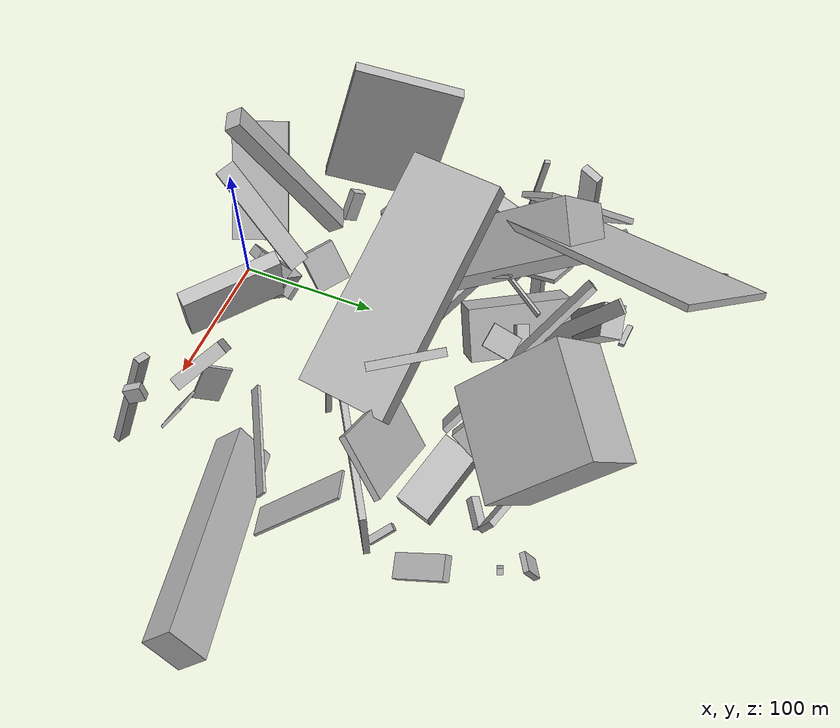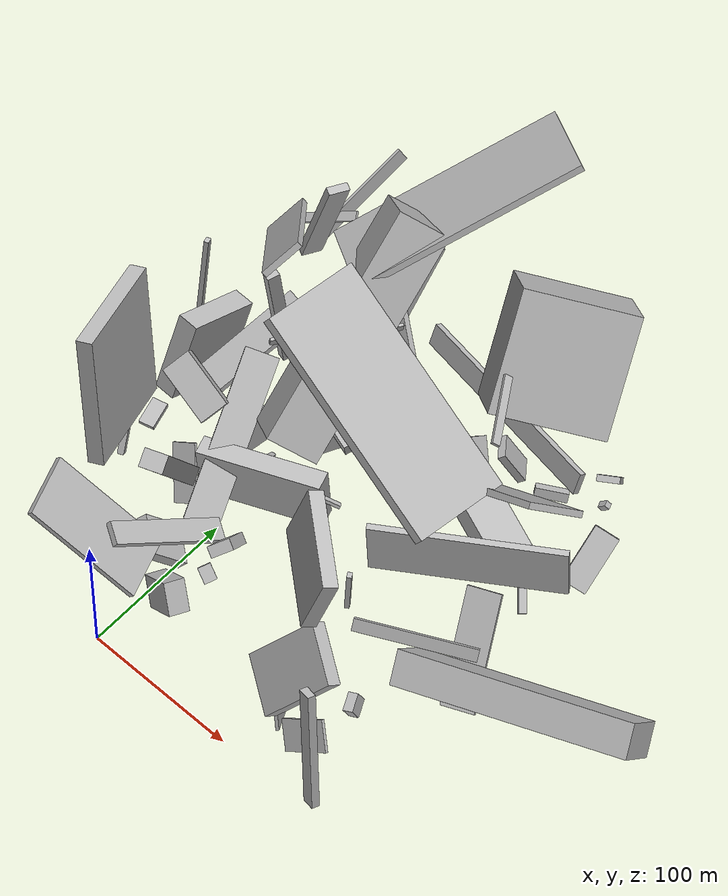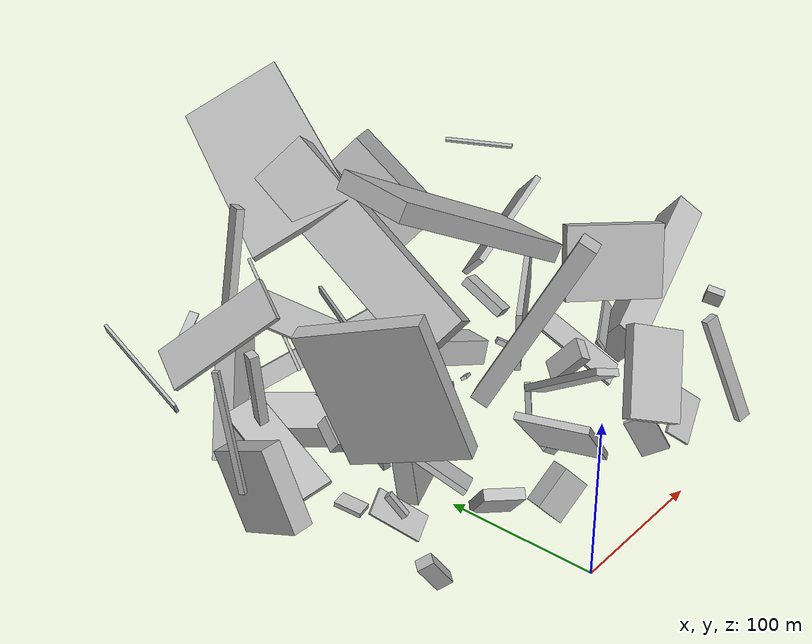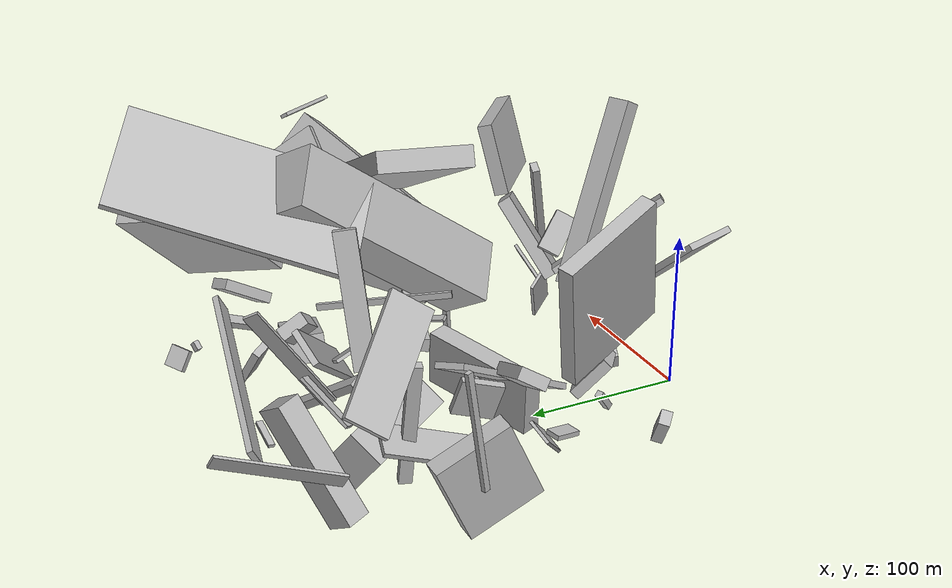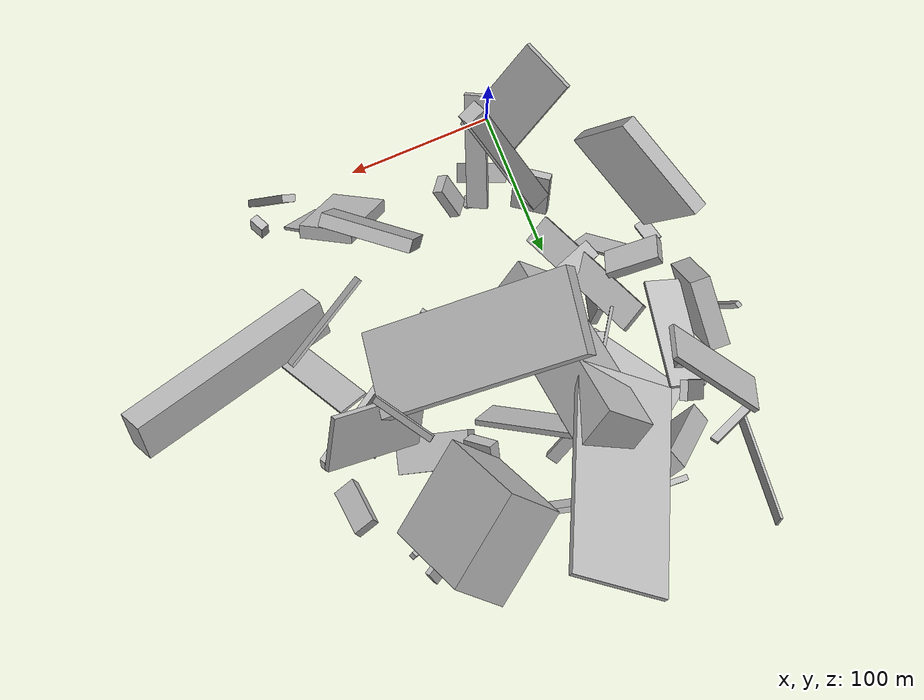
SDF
<sdf version="1.6">
 <world name="default">
  <model name="building_2">
   <static>0</static>
   <pose>-1.69499927644267 78.45073827126195 86.37497318792698 0.07220504103765624 -0.5015056887633661 1.9244864186337203</pose>
   <link name="link">
    <gravity>0</gravity>
    <pose>0 0 57.5 0 0 0</pose>
    <collision name="collision"><geometry><box><size>11 14 115</size></box></geometry></collision>
    <visual name="visual">
     <cast_shadows>0</cast_shadows>
     <geometry><box><size>11 14 115</size></box></geometry>
     <material>
      <script>
       <uri>model://HANNAS_wall/materials/scripts</uri>
       <uri>model://HANNAS_wall/materials/textures</uri>
       <name>vrc/HANNAS_wall</name>
      </script>
     </material>
    </visual>
   </link>
  </model>
  <model name="building_6">
   <static>0</static>
   <pose>-4.021483482341315 214.1233752536972 29.090512028109554 -3.027519833887416 -0.9082310783751878 -2.646285269551218</pose>
   <link name="link">
    <gravity>0</gravity>
    <pose>0 0 12.0 0 0 0</pose>
    <collision name="collision"><geometry><box><size>38 73 24</size></box></geometry></collision>
    <visual name="visual">
     <cast_shadows>0</cast_shadows>
     <geometry><box><size>38 73 24</size></box></geometry>
     <material>
      <script>
       <uri>model://HANNAS_wall/materials/scripts</uri>
       <uri>model://HANNAS_wall/materials/textures</uri>
       <name>vrc/HANNAS_wall</name>
      </script>
     </material>
    </visual>
   </link>
  </model>
  <model name="building_8">
   <static>0</static>
   <pose>127.06569472224858 238.69900216793445 95.78885259071888 0.7653650072681788 -0.26575010118467 -2.508618611504383</pose>
   <link name="link">
    <gravity>0</gravity>
    <pose>0 0 37.5 0 0 0</pose>
    <collision name="collision"><geometry><box><size>71 43 75</size></box></geometry></collision>
    <visual name="visual">
     <cast_shadows>0</cast_shadows>
     <geometry><box><size>71 43 75</size></box></geometry>
     <material>
      <script>
       <uri>model://HANNAS_wall/materials/scripts</uri>
       <uri>model://HANNAS_wall/materials/textures</uri>
       <name>vrc/HANNAS_wall</name>
      </script>
     </material>
    </visual>
   </link>
  </model>
  <model name="building_12">
   <static>0</static>
   <pose>-64.8675989419472 88.76867121726475 41.04305086515134 1.5485127155446756 0.6728806258827076 1.968441143641871</pose>
   <link name="link">
    <gravity>0</gravity>
    <pose>0 0 2.0 0 0 0</pose>
    <collision name="collision"><geometry><box><size>4 16 4</size></box></geometry></collision>
    <visual name="visual">
     <cast_shadows>0</cast_shadows>
     <geometry><box><size>4 16 4</size></box></geometry>
     <material>
      <script>
       <uri>model://HANNAS_wall/materials/scripts</uri>
       <uri>model://HANNAS_wall/materials/textures</uri>
       <name>vrc/HANNAS_wall</name>
      </script>
     </material>
    </visual>
   </link>
  </model>
  <model name="building_15">
   <static>0</static>
   <pose>28.11869566267768 131.06991790489772 89.83151523766983 0.8233377608432507 -0.50299375837068 -2.653175990131853</pose>
   <link name="link">
    <gravity>0</gravity>
    <pose>0 0 75.0 0 0 0</pose>
    <collision name="collision"><geometry><box><size>33 38 150</size></box></geometry></collision>
    <visual name="visual">
     <cast_shadows>0</cast_shadows>
     <geometry><box><size>33 38 150</size></box></geometry>
     <material>
      <script>
       <uri>model://HANNAS_wall/materials/scripts</uri>
       <uri>model://HANNAS_wall/materials/textures</uri>
       <name>vrc/HANNAS_wall</name>
      </script>
     </material>
    </visual>
   </link>
  </model>
  <model name="building_24">
   <static>0</static>
   <pose>141.41804909616135 151.40605957398418 112.35346194942885 -0.09895257340696313 1.0911281022438857 2.890886171830718</pose>
   <link name="link">
    <gravity>0</gravity>
    <pose>0 0 75.0 0 0 0</pose>
    <collision name="collision"><geometry><box><size>13 58 150</size></box></geometry></collision>
    <visual name="visual">
     <cast_shadows>0</cast_shadows>
     <geometry><box><size>13 58 150</size></box></geometry>
     <material>
      <script>
       <uri>model://HANNAS_wall/materials/scripts</uri>
       <uri>model://HANNAS_wall/materials/textures</uri>
       <name>vrc/HANNAS_wall</name>
      </script>
     </material>
    </visual>
   </link>
  </model>
  <model name="building_27">
   <static>0</static>
   <pose>119.43008749507898 34.0795139759411 62.10818208030938 -2.6143554309659014 -0.9071102201990853 0.5768986253314744</pose>
   <link name="link">
    <gravity>0</gravity>
    <pose>0 0 4.5 0 0 0</pose>
    <collision name="collision"><geometry><box><size>59 37 9</size></box></geometry></collision>
    <visual name="visual">
     <cast_shadows>0</cast_shadows>
     <geometry><box><size>59 37 9</size></box></geometry>
     <material>
      <script>
       <uri>model://HANNAS_wall/materials/scripts</uri>
       <uri>model://HANNAS_wall/materials/textures</uri>
       <name>vrc/HANNAS_wall</name>
      </script>
     </material>
    </visual>
   </link>
  </model>
  <model name="building_29">
   <static>0</static>
   <pose>-18.501599703181732 34.55249805500484 91.51514530621527 -1.599079204548019 -0.7428505819784835 -2.775323332562183</pose>
   <link name="link">
    <gravity>0</gravity>
    <pose>0 0 19.5 0 0 0</pose>
    <collision name="collision"><geometry><box><size>81 4 39</size></box></geometry></collision>
    <visual name="visual">
     <cast_shadows>0</cast_shadows>
     <geometry><box><size>81 4 39</size></box></geometry>
     <material>
      <script>
       <uri>model://HANNAS_wall/materials/scripts</uri>
       <uri>model://HANNAS_wall/materials/textures</uri>
       <name>vrc/HANNAS_wall</name>
      </script>
     </material>
    </visual>
   </link>
  </model>
  <model name="building_33">
   <static>0</static>
   <pose>146.41188995742405 155.93993946319154 42.02053506550675 0.03514720147749563 0.0022768369842550086 -1.0051173656140224</pose>
   <link name="link">
    <gravity>0</gravity>
    <pose>0 0 21.0 0 0 0</pose>
    <collision name="collision"><geometry><box><size>4 116 42</size></box></geometry></collision>
    <visual name="visual">
     <cast_shadows>0</cast_shadows>
     <geometry><box><size>4 116 42</size></box></geometry>
     <material>
      <script>
       <uri>model://HANNAS_wall/materials/scripts</uri>
       <uri>model://HANNAS_wall/materials/textures</uri>
       <name>vrc/HANNAS_wall</name>
      </script>
     </material>
    </visual>
   </link>
  </model>
  <model name="building_34">
   <static>0</static>
   <pose>-67.7980578442995 217.5691544374693 91.88285674449496 0.8321114528238347 -0.6209963709701257 -2.9994786119582115</pose>
   <link name="link">
    <gravity>0</gravity>
    <pose>0 0 14.0 0 0 0</pose>
    <collision name="collision"><geometry><box><size>4 80 28</size></box></geometry></collision>
    <visual name="visual">
     <cast_shadows>0</cast_shadows>
     <geometry><box><size>4 80 28</size></box></geometry>
     <material>
      <script>
       <uri>model://HANNAS_wall/materials/scripts</uri>
       <uri>model://HANNAS_wall/materials/textures</uri>
       <name>vrc/HANNAS_wall</name>
      </script>
     </material>
    </visual>
   </link>
  </model>
  <model name="building_37">
   <static>0</static>
   <pose>166.17992131516675 181.48246720280108 10.305339806930833 -3.0049209529908656 -0.4776856057005283 2.315428261411848</pose>
   <link name="link">
    <gravity>0</gravity>
    <pose>0 0 2.0 0 0 0</pose>
    <collision name="collision"><geometry><box><size>19 5 4</size></box></geometry></collision>
    <visual name="visual">
     <cast_shadows>0</cast_shadows>
     <geometry><box><size>19 5 4</size></box></geometry>
     <material>
      <script>
       <uri>model://HANNAS_wall/materials/scripts</uri>
       <uri>model://HANNAS_wall/materials/textures</uri>
       <name>vrc/HANNAS_wall</name>
      </script>
     </material>
    </visual>
   </link>
  </model>
  <model name="building_39">
   <static>0</static>
   <pose>144.4724974373607 272.6632254772811 8.677053772840171 -1.4650228658175313 0.5666898650434783 -0.9797135430467324</pose>
   <link name="link">
    <gravity>0</gravity>
    <pose>0 0 7.0 0 0 0</pose>
    <collision name="collision"><geometry><box><size>4 14 14</size></box></geometry></collision>
    <visual name="visual">
     <cast_shadows>0</cast_shadows>
     <geometry><box><size>4 14 14</size></box></geometry>
     <material>
      <script>
       <uri>model://HANNAS_wall/materials/scripts</uri>
       <uri>model://HANNAS_wall/materials/textures</uri>
       <name>vrc/HANNAS_wall</name>
      </script>
     </material>
    </visual>
   </link>
  </model>
  <model name="building_43">
   <static>0</static>
   <pose>35.012057612316056 225.5107082541949 53.2711031528598 0.8115681893532596 -0.7263582766795112 0.35663448138038545</pose>
   <link name="link">
    <gravity>0</gravity>
    <pose>0 0 2.0 0 0 0</pose>
    <collision name="collision"><geometry><box><size>23 135 4</size></box></geometry></collision>
    <visual name="visual">
     <cast_shadows>0</cast_shadows>
     <geometry><box><size>23 135 4</size></box></geometry>
     <material>
      <script>
       <uri>model://HANNAS_wall/materials/scripts</uri>
       <uri>model://HANNAS_wall/materials/textures</uri>
       <name>vrc/HANNAS_wall</name>
      </script>
     </material>
    </visual>
   </link>
  </model>
  <model name="building_49">
   <static>0</static>
   <pose>162.9117258286655 196.43203059050646 95.68860959035601 0.7536693604486843 -0.583079489147361 -0.0154469404742837</pose>
   <link name="link">
    <gravity>0</gravity>
    <pose>0 0 20.0 0 0 0</pose>
    <collision name="collision"><geometry><box><size>74 4 40</size></box></geometry></collision>
    <visual name="visual">
     <cast_shadows>0</cast_shadows>
     <geometry><box><size>74 4 40</size></box></geometry>
     <material>
      <script>
       <uri>model://HANNAS_wall/materials/scripts</uri>
       <uri>model://HANNAS_wall/materials/textures</uri>
       <name>vrc/HANNAS_wall</name>
      </script>
     </material>
    </visual>
   </link>
  </model>
  <model name="building_58">
   <static>0</static>
   <pose>25.721043345929715 34.76046443924251 19.42309811803009 0.7407969602970624 -0.19065259778635846 -1.9637620691150814</pose>
   <link name="link">
    <gravity>0</gravity>
    <pose>0 0 10.0 0 0 0</pose>
    <collision name="collision"><geometry><box><size>13 27 20</size></box></geometry></collision>
    <visual name="visual">
     <cast_shadows>0</cast_shadows>
     <geometry><box><size>13 27 20</size></box></geometry>
     <material>
      <script>
       <uri>model://HANNAS_wall/materials/scripts</uri>
       <uri>model://HANNAS_wall/materials/textures</uri>
       <name>vrc/HANNAS_wall</name>
      </script>
     </material>
    </visual>
   </link>
  </model>
  <model name="building_62">
   <static>0</static>
   <pose>-17.448397632257553 132.29022130972038 42.665629059918814 -0.29540694255753763 0.4982888660459151 -1.2260390385102544</pose>
   <link name="link">
    <gravity>0</gravity>
    <pose>0 0 2.0 0 0 0</pose>
    <collision name="collision"><geometry><box><size>106 21 4</size></box></geometry></collision>
    <visual name="visual">
     <cast_shadows>0</cast_shadows>
     <geometry><box><size>106 21 4</size></box></geometry>
     <material>
      <script>
       <uri>model://HANNAS_wall/materials/scripts</uri>
       <uri>model://HANNAS_wall/materials/textures</uri>
       <name>vrc/HANNAS_wall</name>
      </script>
     </material>
    </visual>
   </link>
  </model>
  <model name="building_66">
   <static>0</static>
   <pose>159.95848529587977 86.50468496385342 46.68314994798267 1.195446878900916 0.8605179694929719 1.5425542920536692</pose>
   <link name="link">
    <gravity>0</gravity>
    <pose>0 0 75.0 0 0 0</pose>
    <collision name="collision"><geometry><box><size>28 21 150</size></box></geometry></collision>
    <visual name="visual">
     <cast_shadows>0</cast_shadows>
     <geometry><box><size>28 21 150</size></box></geometry>
     <material>
      <script>
       <uri>model://HANNAS_wall/materials/scripts</uri>
       <uri>model://HANNAS_wall/materials/textures</uri>
       <name>vrc/HANNAS_wall</name>
      </script>
     </material>
    </visual>
   </link>
  </model>
  <model name="building_67">
   <static>0</static>
   <pose>117.41643131386455 190.6665363558045 19.630085070958124 -1.8713272717616756 -1.2817797715934394 0.009358426451447863</pose>
   <link name="link">
    <gravity>0</gravity>
    <pose>0 0 12.5 0 0 0</pose>
    <collision name="collision"><geometry><box><size>18 51 25</size></box></geometry></collision>
    <visual name="visual">
     <cast_shadows>0</cast_shadows>
     <geometry><box><size>18 51 25</size></box></geometry>
     <material>
      <script>
       <uri>model://HANNAS_wall/materials/scripts</uri>
       <uri>model://HANNAS_wall/materials/textures</uri>
       <name>vrc/HANNAS_wall</name>
      </script>
     </material>
    </visual>
   </link>
  </model>
  <model name="building_70">
   <static>0</static>
   <pose>46.779562184224886 143.21849398432911 31.919280016706143 1.660437688073315 -0.08180928195174933 -1.2226653690119238</pose>
   <link name="link">
    <gravity>0</gravity>
    <pose>0 0 39.0 0 0 0</pose>
    <collision name="collision"><geometry><box><size>13 36 78</size></box></geometry></collision>
    <visual name="visual">
     <cast_shadows>0</cast_shadows>
     <geometry><box><size>13 36 78</size></box></geometry>
     <material>
      <script>
       <uri>model://HANNAS_wall/materials/scripts</uri>
       <uri>model://HANNAS_wall/materials/textures</uri>
       <name>vrc/HANNAS_wall</name>
      </script>
     </material>
    </visual>
   </link>
  </model>
  <model name="building_78">
   <static>0</static>
   <pose>99.06335493038986 248.19953153566237 20.985868171813188 -1.4310898031696784 0.5209758179994876 -2.3997343403403955</pose>
   <link name="link">
    <gravity>0</gravity>
    <pose>0 0 8.0 0 0 0</pose>
    <collision name="collision"><geometry><box><size>5 25 16</size></box></geometry></collision>
    <visual name="visual">
     <cast_shadows>0</cast_shadows>
     <geometry><box><size>5 25 16</size></box></geometry>
     <material>
      <script>
       <uri>model://HANNAS_wall/materials/scripts</uri>
       <uri>model://HANNAS_wall/materials/textures</uri>
       <name>vrc/HANNAS_wall</name>
      </script>
     </material>
    </visual>
   </link>
  </model>
  <model name="building_80">
   <static>0</static>
   <pose>80.53274626531588 265.13773406668054 26.249005241027668 1.1041793027183076 -0.19085600257091656 -0.24006480871131267</pose>
   <link name="link">
    <gravity>0</gravity>
    <pose>0 0 2.0 0 0 0</pose>
    <collision name="collision"><geometry><box><size>150 14 4</size></box></geometry></collision>
    <visual name="visual">
     <cast_shadows>0</cast_shadows>
     <geometry><box><size>150 14 4</size></box></geometry>
     <material>
      <script>
       <uri>model://HANNAS_wall/materials/scripts</uri>
       <uri>model://HANNAS_wall/materials/textures</uri>
       <name>vrc/HANNAS_wall</name>
      </script>
     </material>
    </visual>
   </link>
  </model>
  <model name="building_86">
   <static>0</static>
   <pose>-82.9400459721144 189.19204063829775 47.965130789415916 -3.114084911856474 -0.43736351708431503 -1.6203775135812006</pose>
   <link name="link">
    <gravity>0</gravity>
    <pose>0 0 27.0 0 0 0</pose>
    <collision name="collision"><geometry><box><size>50 14 54</size></box></geometry></collision>
    <visual name="visual">
     <cast_shadows>0</cast_shadows>
     <geometry><box><size>50 14 54</size></box></geometry>
     <material>
      <script>
       <uri>model://HANNAS_wall/materials/scripts</uri>
       <uri>model://HANNAS_wall/materials/textures</uri>
       <name>vrc/HANNAS_wall</name>
      </script>
     </material>
    </visual>
   </link>
  </model>
  <model name="building_89">
   <static>0</static>
   <pose>132.72883439011446 45.99715506162177 132.042989099512 1.512366609637848 -0.27121610967104404 -2.2467140366591085</pose>
   <link name="link">
    <gravity>0</gravity>
    <pose>0 0 30.5 0 0 0</pose>
    <collision name="collision"><geometry><box><size>9 46 61</size></box></geometry></collision>
    <visual name="visual">
     <cast_shadows>0</cast_shadows>
     <geometry><box><size>9 46 61</size></box></geometry>
     <material>
      <script>
       <uri>model://HANNAS_wall/materials/scripts</uri>
       <uri>model://HANNAS_wall/materials/textures</uri>
       <name>vrc/HANNAS_wall</name>
      </script>
     </material>
    </visual>
   </link>
  </model>
  <model name="building_97">
   <static>0</static>
   <pose>-56.13393572165694 83.39843535029495 73.09266760006864 -0.2875299080905176 -0.1605828972254644 0.38498205161948046</pose>
   <link name="link">
    <gravity>0</gravity>
    <pose>0 0 44.0 0 0 0</pose>
    <collision name="collision"><geometry><box><size>10 74 88</size></box></geometry></collision>
    <visual name="visual">
     <cast_shadows>0</cast_shadows>
     <geometry><box><size>10 74 88</size></box></geometry>
     <material>
      <script>
       <uri>model://HANNAS_wall/materials/scripts</uri>
       <uri>model://HANNAS_wall/materials/textures</uri>
       <name>vrc/HANNAS_wall</name>
      </script>
     </material>
    </visual>
   </link>
  </model>
  <model name="building_99">
   <static>0</static>
   <pose>35.7914046060988 56.00639823828405 44.393892467840466 -2.5421787909998588 -0.1962925036848626 1.1193960697143084</pose>
   <link name="link">
    <gravity>0</gravity>
    <pose>0 0 2.0 0 0 0</pose>
    <collision name="collision"><geometry><box><size>8 10 4</size></box></geometry></collision>
    <visual name="visual">
     <cast_shadows>0</cast_shadows>
     <geometry><box><size>8 10 4</size></box></geometry>
     <material>
      <script>
       <uri>model://HANNAS_wall/materials/scripts</uri>
       <uri>model://HANNAS_wall/materials/textures</uri>
       <name>vrc/HANNAS_wall</name>
      </script>
     </material>
    </visual>
   </link>
  </model>
  <model name="building_100">
   <static>0</static>
   <pose>-2.5540800931508327 214.7129061877005 150.78798484053578 -1.199861327018507 -0.48655423775088325 -0.6217871638910284</pose>
   <link name="link">
    <gravity>0</gravity>
    <pose>0 0 72.0 0 0 0</pose>
    <collision name="collision"><geometry><box><size>70 4 144</size></box></geometry></collision>
    <visual name="visual">
     <cast_shadows>0</cast_shadows>
     <geometry><box><size>70 4 144</size></box></geometry>
     <material>
      <script>
       <uri>model://HANNAS_wall/materials/scripts</uri>
       <uri>model://HANNAS_wall/materials/textures</uri>
       <name>vrc/HANNAS_wall</name>
      </script>
     </material>
    </visual>
   </link>
  </model>
  <model name="building_108">
   <static>0</static>
   <pose>-50.7380834673775 214.04203988857057 50.77443412842337 1.6335983050369647 -0.09668152868931869 -0.3017979098834156</pose>
   <link name="link">
    <gravity>0</gravity>
    <pose>0 0 4.0 0 0 0</pose>
    <collision name="collision"><geometry><box><size>6 80 8</size></box></geometry></collision>
    <visual name="visual">
     <cast_shadows>0</cast_shadows>
     <geometry><box><size>6 80 8</size></box></geometry>
     <material>
      <script>
       <uri>model://HANNAS_wall/materials/scripts</uri>
       <uri>model://HANNAS_wall/materials/textures</uri>
       <name>vrc/HANNAS_wall</name>
      </script>
     </material>
    </visual>
   </link>
  </model>
  <model name="building_114">
   <static>0</static>
   <pose>90.3531346929497 215.78481155659006 41.19330266284844 0.7290451568677828 0.6187262295484784 1.3241912808865017</pose>
   <link name="link">
    <gravity>0</gravity>
    <pose>0 0 4.5 0 0 0</pose>
    <collision name="collision"><geometry><box><size>19 22 9</size></box></geometry></collision>
    <visual name="visual">
     <cast_shadows>0</cast_shadows>
     <geometry><box><size>19 22 9</size></box></geometry>
     <material>
      <script>
       <uri>model://HANNAS_wall/materials/scripts</uri>
       <uri>model://HANNAS_wall/materials/textures</uri>
       <name>vrc/HANNAS_wall</name>
      </script>
     </material>
    </visual>
   </link>
  </model>
  <model name="building_115">
   <static>0</static>
   <pose>183.6857582979971 219.47763082948487 26.467570535780062 0.350430646961028 -0.5230013388202884 1.6493721942960926</pose>
   <link name="link">
    <gravity>0</gravity>
    <pose>0 0 3.5 0 0 0</pose>
    <collision name="collision"><geometry><box><size>37 16 7</size></box></geometry></collision>
    <visual name="visual">
     <cast_shadows>0</cast_shadows>
     <geometry><box><size>37 16 7</size></box></geometry>
     <material>
      <script>
       <uri>model://HANNAS_wall/materials/scripts</uri>
       <uri>model://HANNAS_wall/materials/textures</uri>
       <name>vrc/HANNAS_wall</name>
      </script>
     </material>
    </visual>
   </link>
  </model>
  <model name="building_116">
   <static>0</static>
   <pose>22.171580789687937 212.24303810541048 61.0064979860644 2.4349519437444815 -0.9113623656166472 0.6249374480984508</pose>
   <link name="link">
    <gravity>0</gravity>
    <pose>0 0 8.5 0 0 0</pose>
    <collision name="collision"><geometry><box><size>2 21 17</size></box></geometry></collision>
    <visual name="visual">
     <cast_shadows>0</cast_shadows>
     <geometry><box><size>2 21 17</size></box></geometry>
     <material>
      <script>
       <uri>model://HANNAS_wall/materials/scripts</uri>
       <uri>model://HANNAS_wall/materials/textures</uri>
       <name>vrc/HANNAS_wall</name>
      </script>
     </material>
    </visual>
   </link>
  </model>
  <model name="building_121">
   <static>0</static>
   <pose>176.82364552828943 29.565248135010865 97.02054318752153 -1.8562626242102425 -0.26876026602451913 2.001620846771746</pose>
   <link name="link">
    <gravity>0</gravity>
    <pose>0 0 3.0 0 0 0</pose>
    <collision name="collision"><geometry><box><size>11 10 6</size></box></geometry></collision>
    <visual name="visual">
     <cast_shadows>0</cast_shadows>
     <geometry><box><size>11 10 6</size></box></geometry>
     <material>
      <script>
       <uri>model://HANNAS_wall/materials/scripts</uri>
       <uri>model://HANNAS_wall/materials/textures</uri>
       <name>vrc/HANNAS_wall</name>
      </script>
     </material>
    </visual>
   </link>
  </model>
  <model name="building_123">
   <static>0</static>
   <pose>62.375914129064185 138.9505679308418 47.58007900131728 1.1869612213428384 -0.5000056552316984 -0.9395791571961889</pose>
   <link name="link">
    <gravity>0</gravity>
    <pose>0 0 5.5 0 0 0</pose>
    <collision name="collision"><geometry><box><size>4 2 11</size></box></geometry></collision>
    <visual name="visual">
     <cast_shadows>0</cast_shadows>
     <geometry><box><size>4 2 11</size></box></geometry>
     <material>
      <script>
       <uri>model://HANNAS_wall/materials/scripts</uri>
       <uri>model://HANNAS_wall/materials/textures</uri>
       <name>vrc/HANNAS_wall</name>
      </script>
     </material>
    </visual>
   </link>
  </model>
  <model name="building_127">
   <static>0</static>
   <pose>-61.26474252664779 265.48976924221995 82.74834611966804 -0.5212331769532811 -0.31316484308459974 2.139745410393736</pose>
   <link name="link">
    <gravity>0</gravity>
    <pose>0 0 1.0 0 0 0</pose>
    <collision name="collision"><geometry><box><size>6 38 2</size></box></geometry></collision>
    <visual name="visual">
     <cast_shadows>0</cast_shadows>
     <geometry><box><size>6 38 2</size></box></geometry>
     <material>
      <script>
       <uri>model://HANNAS_wall/materials/scripts</uri>
       <uri>model://HANNAS_wall/materials/textures</uri>
       <name>vrc/HANNAS_wall</name>
      </script>
     </material>
    </visual>
   </link>
  </model>
  <model name="building_129">
   <static>0</static>
   <pose>136.6111977468405 189.55597669297805 170.76317757660536 -0.08319117235454182 -0.6149890419695289 -2.5279439798551464</pose>
   <link name="link">
    <gravity>0</gravity>
    <pose>0 0 1.0 0 0 0</pose>
    <collision name="collision"><geometry><box><size>5 44 2</size></box></geometry></collision>
    <visual name="visual">
     <cast_shadows>0</cast_shadows>
     <geometry><box><size>5 44 2</size></box></geometry>
     <material>
      <script>
       <uri>model://HANNAS_wall/materials/scripts</uri>
       <uri>model://HANNAS_wall/materials/textures</uri>
       <name>vrc/HANNAS_wall</name>
      </script>
     </material>
    </visual>
   </link>
  </model>
  <model name="building_132">
   <static>0</static>
   <pose>-4.958800770777777 64.19133429461158 27.0132939148737 -2.284390944878385 -0.1235566033025523 2.4977008710403203</pose>
   <link name="link">
    <gravity>0</gravity>
    <pose>0 0 3.5 0 0 0</pose>
    <collision name="collision"><geometry><box><size>25 30 7</size></box></geometry></collision>
    <visual name="visual">
     <cast_shadows>0</cast_shadows>
     <geometry><box><size>25 30 7</size></box></geometry>
     <material>
      <script>
       <uri>model://HANNAS_wall/materials/scripts</uri>
       <uri>model://HANNAS_wall/materials/textures</uri>
       <name>vrc/HANNAS_wall</name>
      </script>
     </material>
    </visual>
   </link>
  </model>
  <model name="building_135">
   <static>0</static>
   <pose>3.4661128020014793 140.8968217185235 28.35087222639524 -1.291343924105555 -0.737332814318982 1.4624938915797985</pose>
   <link name="link">
    <gravity>0</gravity>
    <pose>0 0 1.5 0 0 0</pose>
    <collision name="collision"><geometry><box><size>9 14 3</size></box></geometry></collision>
    <visual name="visual">
     <cast_shadows>0</cast_shadows>
     <geometry><box><size>9 14 3</size></box></geometry>
     <material>
      <script>
       <uri>model://HANNAS_wall/materials/scripts</uri>
       <uri>model://HANNAS_wall/materials/textures</uri>
       <name>vrc/HANNAS_wall</name>
      </script>
     </material>
    </visual>
   </link>
  </model>
  <model name="building_136">
   <static>0</static>
   <pose>-51.445139691675024 128.34747641476326 56.731408024569134 0.6799447330450071 0.9086701291430079 2.005907190910931</pose>
   <link name="link">
    <gravity>0</gravity>
    <pose>0 0 9.5 0 0 0</pose>
    <collision name="collision"><geometry><box><size>8 38 19</size></box></geometry></collision>
    <visual name="visual">
     <cast_shadows>0</cast_shadows>
     <geometry><box><size>8 38 19</size></box></geometry>
     <material>
      <script>
       <uri>model://HANNAS_wall/materials/scripts</uri>
       <uri>model://HANNAS_wall/materials/textures</uri>
       <name>vrc/HANNAS_wall</name>
      </script>
     </material>
    </visual>
   </link>
  </model>
  <model name="building_138">
   <static>0</static>
   <pose>6.626778629625221 257.594120500761 73.64768112020415 1.2175786744666033 0.508595857259541 0.8397677800716444</pose>
   <link name="link">
    <gravity>0</gravity>
    <pose>0 0 1.0 0 0 0</pose>
    <collision name="collision"><geometry><box><size>10 80 2</size></box></geometry></collision>
    <visual name="visual">
     <cast_shadows>0</cast_shadows>
     <geometry><box><size>10 80 2</size></box></geometry>
     <material>
      <script>
       <uri>model://HANNAS_wall/materials/scripts</uri>
       <uri>model://HANNAS_wall/materials/textures</uri>
       <name>vrc/HANNAS_wall</name>
      </script>
     </material>
    </visual>
   </link>
  </model>
  <model name="building_143">
   <static>0</static>
   <pose>92.08694774907919 111.35434703750222 21.556962662088853 1.936727936256085 -1.48807745542001 1.760537784573647</pose>
   <link name="link">
    <gravity>0</gravity>
    <pose>0 0 1.5 0 0 0</pose>
    <collision name="collision"><geometry><box><size>31 4 3</size></box></geometry></collision>
    <visual name="visual">
     <cast_shadows>0</cast_shadows>
     <geometry><box><size>31 4 3</size></box></geometry>
     <material>
      <script>
       <uri>model://HANNAS_wall/materials/scripts</uri>
       <uri>model://HANNAS_wall/materials/textures</uri>
       <name>vrc/HANNAS_wall</name>
      </script>
     </material>
    </visual>
   </link>
  </model>
  <model name="building_144">
   <static>0</static>
   <pose>-46.21821092459811 122.23176348707956 18.775886899950287 2.369300811723715 -0.530113272486339 0.29557231933163125</pose>
   <link name="link">
    <gravity>0</gravity>
    <pose>0 0 18.0 0 0 0</pose>
    <collision name="collision"><geometry><box><size>17 2 36</size></box></geometry></collision>
    <visual name="visual">
     <cast_shadows>0</cast_shadows>
     <geometry><box><size>17 2 36</size></box></geometry>
     <material>
      <script>
       <uri>model://HANNAS_wall/materials/scripts</uri>
       <uri>model://HANNAS_wall/materials/textures</uri>
       <name>vrc/HANNAS_wall</name>
      </script>
     </material>
    </visual>
   </link>
  </model>
  <model name="building_147">
   <static>0</static>
   <pose>-19.075562506080196 149.18870539329885 33.013445381186564 0.9215170930922413 1.249456650715451 0.6323180752897025</pose>
   <link name="link">
    <gravity>0</gravity>
    <pose>0 0 2.5 0 0 0</pose>
    <collision name="collision"><geometry><box><size>25 27 5</size></box></geometry></collision>
    <visual name="visual">
     <cast_shadows>0</cast_shadows>
     <geometry><box><size>25 27 5</size></box></geometry>
     <material>
      <script>
       <uri>model://HANNAS_wall/materials/scripts</uri>
       <uri>model://HANNAS_wall/materials/textures</uri>
       <name>vrc/HANNAS_wall</name>
      </script>
     </material>
    </visual>
   </link>
  </model>
  <model name="building_148">
   <static>0</static>
   <pose>140.3354925859367 23.552104818533685 25.2953150892563 -2.271841920169702 -0.6445846789175076 0.27234665289505183</pose>
   <link name="link">
    <gravity>0</gravity>
    <pose>0 0 1.0 0 0 0</pose>
    <collision name="collision"><geometry><box><size>32 19 2</size></box></geometry></collision>
    <visual name="visual">
     <cast_shadows>0</cast_shadows>
     <geometry><box><size>32 19 2</size></box></geometry>
     <material>
      <script>
       <uri>model://HANNAS_wall/materials/scripts</uri>
       <uri>model://HANNAS_wall/materials/textures</uri>
       <name>vrc/HANNAS_wall</name>
      </script>
     </material>
    </visual>
   </link>
  </model>
  <model name="building_150">
   <static>0</static>
   <pose>-12.7352409717658 273.55273412652383 60.06184068068535 2.5937995670037575 -0.21283779026583588 -1.2426840109683621</pose>
   <link name="link">
    <gravity>0</gravity>
    <pose>0 0 40.0 0 0 0</pose>
    <collision name="collision"><geometry><box><size>15 23 80</size></box></geometry></collision>
    <visual name="visual">
     <cast_shadows>0</cast_shadows>
     <geometry><box><size>15 23 80</size></box></geometry>
     <material>
      <script>
       <uri>model://HANNAS_wall/materials/scripts</uri>
       <uri>model://HANNAS_wall/materials/textures</uri>
       <name>vrc/HANNAS_wall</name>
      </script>
     </material>
    </visual>
   </link>
  </model>
  <model name="building_158">
   <static>0</static>
   <pose>-92.51308332633953 190.03708903266656 61.84548269239407 1.5369368199021596 -0.15764491619599796 -1.24584789878561</pose>
   <link name="link">
    <gravity>0</gravity>
    <pose>0 0 1.5 0 0 0</pose>
    <collision name="collision"><geometry><box><size>4 80 3</size></box></geometry></collision>
    <visual name="visual">
     <cast_shadows>0</cast_shadows>
     <geometry><box><size>4 80 3</size></box></geometry>
     <material>
      <script>
       <uri>model://HANNAS_wall/materials/scripts</uri>
       <uri>model://HANNAS_wall/materials/textures</uri>
       <name>vrc/HANNAS_wall</name>
      </script>
     </material>
    </visual>
   </link>
  </model>
  <model name="building_160">
   <static>0</static>
   <pose>-64.92953341287358 153.09933719836388 20.34188320611907 -0.7098792419660057 1.1668955188161207 0.628775450392911</pose>
   <link name="link">
    <gravity>0</gravity>
    <pose>0 0 40.0 0 0 0</pose>
    <collision name="collision"><geometry><box><size>3 25 80</size></box></geometry></collision>
    <visual name="visual">
     <cast_shadows>0</cast_shadows>
     <geometry><box><size>3 25 80</size></box></geometry>
     <material>
      <script>
       <uri>model://HANNAS_wall/materials/scripts</uri>
       <uri>model://HANNAS_wall/materials/textures</uri>
       <name>vrc/HANNAS_wall</name>
      </script>
     </material>
    </visual>
   </link>
  </model>
  <model name="building_162">
   <static>0</static>
   <pose>-70.21174548537172 127.69606047648074 31.268454989526546 1.7320972701344794 -0.030624929655938195 0.22424395491477803</pose>
   <link name="link">
    <gravity>0</gravity>
    <pose>0 0 8.5 0 0 0</pose>
    <collision name="collision"><geometry><box><size>10 3 17</size></box></geometry></collision>
    <visual name="visual">
     <cast_shadows>0</cast_shadows>
     <geometry><box><size>10 3 17</size></box></geometry>
     <material>
      <script>
       <uri>model://HANNAS_wall/materials/scripts</uri>
       <uri>model://HANNAS_wall/materials/textures</uri>
       <name>vrc/HANNAS_wall</name>
      </script>
     </material>
    </visual>
   </link>
  </model>
  <model name="building_167">
   <static>0</static>
   <pose>-71.2263330130315 57.1065251527362 20.24755943240308 -1.9962328713128223 -0.9833673157379267 2.857507884002117</pose>
   <link name="link">
    <gravity>0</gravity>
    <pose>0 0 3.5 0 0 0</pose>
    <collision name="collision"><geometry><box><size>23 10 7</size></box></geometry></collision>
    <visual name="visual">
     <cast_shadows>0</cast_shadows>
     <geometry><box><size>23 10 7</size></box></geometry>
     <material>
      <script>
       <uri>model://HANNAS_wall/materials/scripts</uri>
       <uri>model://HANNAS_wall/materials/textures</uri>
       <name>vrc/HANNAS_wall</name>
      </script>
     </material>
    </visual>
   </link>
  </model>
  <model name="building_178">
   <static>0</static>
   <pose>51.52916032339278 160.49723535080125 73.80475552360372 1.5905287449974825 0.12203899213819648 -1.897008083590038</pose>
   <link name="link">
    <gravity>0</gravity>
    <pose>0 0 31.5 0 0 0</pose>
    <collision name="collision"><geometry><box><size>9 8 63</size></box></geometry></collision>
    <visual name="visual">
     <cast_shadows>0</cast_shadows>
     <geometry><box><size>9 8 63</size></box></geometry>
     <material>
      <script>
       <uri>model://HANNAS_wall/materials/scripts</uri>
       <uri>model://HANNAS_wall/materials/textures</uri>
       <name>vrc/HANNAS_wall</name>
      </script>
     </material>
    </visual>
   </link>
  </model>
  <model name="building_179">
   <static>0</static>
   <pose>110.94507140282781 32.782326915471856 20.733435234367924 -1.3969071881062627 -0.46264424737163173 -1.0338380172484085</pose>
   <link name="link">
    <gravity>0</gravity>
    <pose>0 0 1.0 0 0 0</pose>
    <collision name="collision"><geometry><box><size>19 31 2</size></box></geometry></collision>
    <visual name="visual">
     <cast_shadows>0</cast_shadows>
     <geometry><box><size>19 31 2</size></box></geometry>
     <material>
      <script>
       <uri>model://HANNAS_wall/materials/scripts</uri>
       <uri>model://HANNAS_wall/materials/textures</uri>
       <name>vrc/HANNAS_wall</name>
      </script>
     </material>
    </visual>
   </link>
  </model>
  <model name="building_181">
   <static>0</static>
   <pose>27.103491289713322 224.89830593570224 30.829799780537368 0.32713759677930176 -0.6011494509566685 -2.7267025667793563</pose>
   <link name="link">
    <gravity>0</gravity>
    <pose>0 0 2.5 0 0 0</pose>
    <collision name="collision"><geometry><box><size>59 9 5</size></box></geometry></collision>
    <visual name="visual">
     <cast_shadows>0</cast_shadows>
     <geometry><box><size>59 9 5</size></box></geometry>
     <material>
      <script>
       <uri>model://HANNAS_wall/materials/scripts</uri>
       <uri>model://HANNAS_wall/materials/textures</uri>
       <name>vrc/HANNAS_wall</name>
      </script>
     </material>
    </visual>
   </link>
  </model>
  <model name="building_185">
   <static>0</static>
   <pose>183.22017642633008 132.32085943814863 27.217581229493817 1.886960140458493 -0.8743448571878791 -1.512218953605573</pose>
   <link name="link">
    <gravity>0</gravity>
    <pose>0 0 11.0 0 0 0</pose>
    <collision name="collision"><geometry><box><size>2 71 22</size></box></geometry></collision>
    <visual name="visual">
     <cast_shadows>0</cast_shadows>
     <geometry><box><size>2 71 22</size></box></geometry>
     <material>
      <script>
       <uri>model://HANNAS_wall/materials/scripts</uri>
       <uri>model://HANNAS_wall/materials/textures</uri>
       <name>vrc/HANNAS_wall</name>
      </script>
     </material>
    </visual>
   </link>
  </model>
  <model name="building_198">
   <static>0</static>
   <pose>5.1513576263682115 198.6898076639658 100.24427396431787 -1.7112555599910086 -1.4007314834454396 1.1263117098664295</pose>
   <link name="link">
    <gravity>0</gravity>
    <pose>0 0 1.0 0 0 0</pose>
    <collision name="collision"><geometry><box><size>4 80 2</size></box></geometry></collision>
    <visual name="visual">
     <cast_shadows>0</cast_shadows>
     <geometry><box><size>4 80 2</size></box></geometry>
     <material>
      <script>
       <uri>model://HANNAS_wall/materials/scripts</uri>
       <uri>model://HANNAS_wall/materials/textures</uri>
       <name>vrc/HANNAS_wall</name>
      </script>
     </material>
    </visual>
   </link>
  </model>
  <model name="building_202">
   <static>0</static>
   <pose>-16.025852743287878 285.5049288553958 44.08885196873945 1.6261574878227953 -0.2131475040248034 -0.04416542979047544</pose>
   <link name="link">
    <gravity>0</gravity>
    <pose>0 0 2.0 0 0 0</pose>
    <collision name="collision"><geometry><box><size>21 2 4</size></box></geometry></collision>
    <visual name="visual">
     <cast_shadows>0</cast_shadows>
     <geometry><box><size>21 2 4</size></box></geometry>
     <material>
      <script>
       <uri>model://HANNAS_wall/materials/scripts</uri>
       <uri>model://HANNAS_wall/materials/textures</uri>
       <name>vrc/HANNAS_wall</name>
      </script>
     </material>
    </visual>
   </link>
  </model>
  <model name="building_204">
   <static>0</static>
   <pose>-43.90618610541812 232.30092382137246 130.83119070940117 -1.7120607248506097 0.20644901419284514 -0.45594853101349925</pose>
   <link name="link">
    <gravity>0</gravity>
    <pose>0 0 6.5 0 0 0</pose>
    <collision name="collision"><geometry><box><size>5 80 13</size></box></geometry></collision>
    <visual name="visual">
     <cast_shadows>0</cast_shadows>
     <geometry><box><size>5 80 13</size></box></geometry>
     <material>
      <script>
       <uri>model://HANNAS_wall/materials/scripts</uri>
       <uri>model://HANNAS_wall/materials/textures</uri>
       <name>vrc/HANNAS_wall</name>
      </script>
     </material>
    </visual>
   </link>
  </model>
  <model name="building_205">
   <static>0</static>
   <pose>18.190971007869766 40.54993372795702 102.60456384336543 1.9699232324473361 -0.907084509996766 0.7193214792591668</pose>
   <link name="link">
    <gravity>0</gravity>
    <pose>0 0 7.0 0 0 0</pose>
    <collision name="collision"><geometry><box><size>4 80 14</size></box></geometry></collision>
    <visual name="visual">
     <cast_shadows>0</cast_shadows>
     <geometry><box><size>4 80 14</size></box></geometry>
     <material>
      <script>
       <uri>model://HANNAS_wall/materials/scripts</uri>
       <uri>model://HANNAS_wall/materials/textures</uri>
       <name>vrc/HANNAS_wall</name>
      </script>
     </material>
    </visual>
   </link>
  </model>
  <model name="building_210">
   <static>0</static>
   <pose>48.81287759764825 64.78347543628217 83.98536900792232 -0.5947480317261621 0.4400937655541964 -2.2341980615224895</pose>
   <link name="link">
    <gravity>0</gravity>
    <pose>0 0 13.0 0 0 0</pose>
    <collision name="collision"><geometry><box><size>14 7 26</size></box></geometry></collision>
    <visual name="visual">
     <cast_shadows>0</cast_shadows>
     <geometry><box><size>14 7 26</size></box></geometry>
     <material>
      <script>
       <uri>model://HANNAS_wall/materials/scripts</uri>
       <uri>model://HANNAS_wall/materials/textures</uri>
       <name>vrc/HANNAS_wall</name>
      </script>
     </material>
    </visual>
   </link>
  </model>
  <model name="building_211">
   <static>0</static>
   <pose>159.28143838122952 5.437671724861326 57.24889172939044 2.055167197299022 -1.195492834503399 2.3780236446253453</pose>
   <link name="link">
    <gravity>0</gravity>
    <pose>0 0 2.5 0 0 0</pose>
    <collision name="collision"><geometry><box><size>80 9 5</size></box></geometry></collision>
    <visual name="visual">
     <cast_shadows>0</cast_shadows>
     <geometry><box><size>80 9 5</size></box></geometry>
     <material>
      <script>
       <uri>model://HANNAS_wall/materials/scripts</uri>
       <uri>model://HANNAS_wall/materials/textures</uri>
       <name>vrc/HANNAS_wall</name>
      </script>
     </material>
    </visual>
   </link>
  </model>
  <model name="building_227">
   <static>0</static>
   <pose>157.0137426011435 99.9001451845798 62.890296820312194 2.5178354270739107 0.09491001940143073 0.5109839964105012</pose>
   <link name="link">
    <gravity>0</gravity>
    <pose>0 0 4.0 0 0 0</pose>
    <collision name="collision"><geometry><box><size>73 2 8</size></box></geometry></collision>
    <visual name="visual">
     <cast_shadows>0</cast_shadows>
     <geometry><box><size>73 2 8</size></box></geometry>
     <material>
      <script>
       <uri>model://HANNAS_wall/materials/scripts</uri>
       <uri>model://HANNAS_wall/materials/textures</uri>
       <name>vrc/HANNAS_wall</name>
      </script>
     </material>
    </visual>
   </link>
  </model>
  <model name="building_234">
   <static>0</static>
   <pose>-75.94617809309983 260.77194686036245 40.61483337300058 -0.7927269445778161 1.0537422523893807 0.5982164663359956</pose>
   <link name="link">
    <gravity>0</gravity>
    <pose>0 0 40.0 0 0 0</pose>
    <collision name="collision"><geometry><box><size>9 2 80</size></box></geometry></collision>
    <visual name="visual">
     <cast_shadows>0</cast_shadows>
     <geometry><box><size>9 2 80</size></box></geometry>
     <material>
      <script>
       <uri>model://HANNAS_wall/materials/scripts</uri>
       <uri>model://HANNAS_wall/materials/textures</uri>
       <name>vrc/HANNAS_wall</name>
      </script>
     </material>
    </visual>
   </link>
  </model>
  <model name="building_238">
   <static>0</static>
   <pose>161.4018240360583 260.89744173586837 8.210307732047205 -0.06298246489093116 0.7827186600606658 -2.819896181227554</pose>
   <link name="link">
    <gravity>0</gravity>
    <pose>0 0 2.0 0 0 0</pose>
    <collision name="collision"><geometry><box><size>6 4 4</size></box></geometry></collision>
    <visual name="visual">
     <cast_shadows>0</cast_shadows>
     <geometry><box><size>6 4 4</size></box></geometry>
     <material>
      <script>
       <uri>model://HANNAS_wall/materials/scripts</uri>
       <uri>model://HANNAS_wall/materials/textures</uri>
       <name>vrc/HANNAS_wall</name>
      </script>
     </material>
    </visual>
   </link>
  </model>
  <model name="building_240">
   <static>0</static>
   <pose>35.16287986963111 206.4533979495554 130.71050916860207 1.1664172646531261 0.39956709982770117 -1.4836629466291293</pose>
   <link name="link">
    <gravity>0</gravity>
    <pose>0 0 3.0 0 0 0</pose>
    <collision name="collision"><geometry><box><size>15 6 6</size></box></geometry></collision>
    <visual name="visual">
     <cast_shadows>0</cast_shadows>
     <geometry><box><size>15 6 6</size></box></geometry>
     <material>
      <script>
       <uri>model://HANNAS_wall/materials/scripts</uri>
       <uri>model://HANNAS_wall/materials/textures</uri>
       <name>vrc/HANNAS_wall</name>
      </script>
     </material>
    </visual>
   </link>
  </model>
  <model name="building_244">
   <static>0</static>
   <pose>137.91783289648882 237.77676461851368 29.395762272798976 0.2787534858559725 -1.0531443214302303 1.9213207629698092</pose>
   <link name="link">
    <gravity>0</gravity>
    <pose>0 0 3.0 0 0 0</pose>
    <collision name="collision"><geometry><box><size>6 20 6</size></box></geometry></collision>
    <visual name="visual">
     <cast_shadows>0</cast_shadows>
     <geometry><box><size>6 20 6</size></box></geometry>
     <material>
      <script>
       <uri>model://HANNAS_wall/materials/scripts</uri>
       <uri>model://HANNAS_wall/materials/textures</uri>
       <name>vrc/HANNAS_wall</name>
      </script>
     </material>
    </visual>
   </link>
  </model>
 </world>
</sdf>
